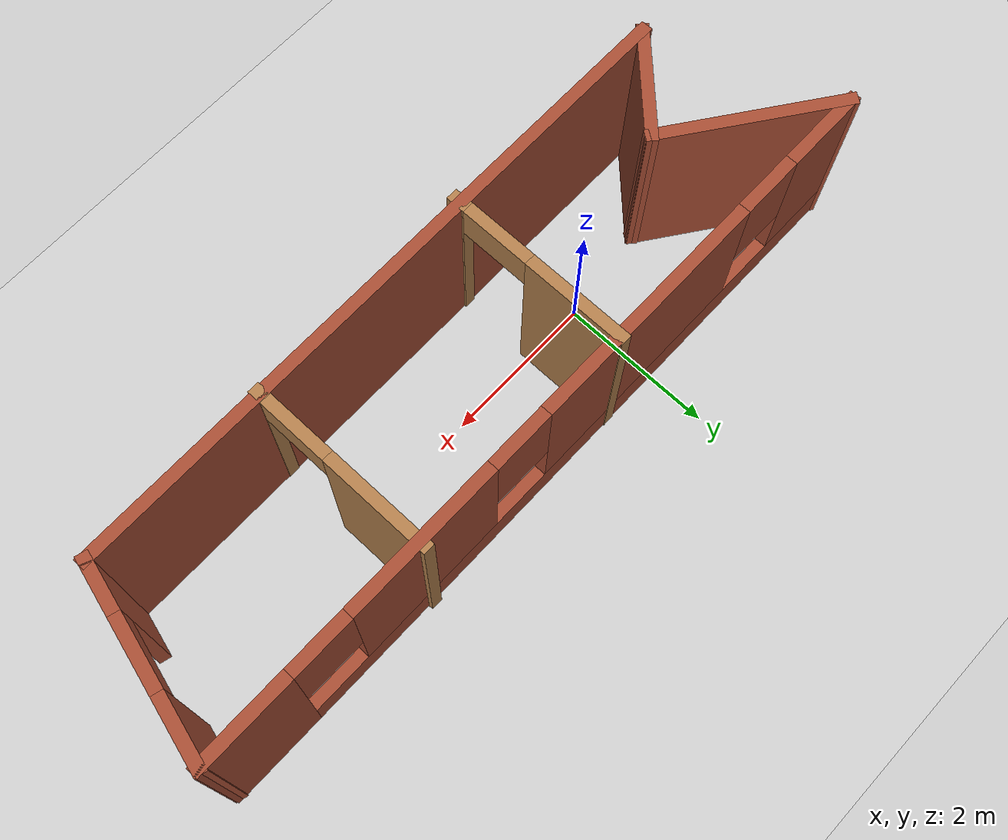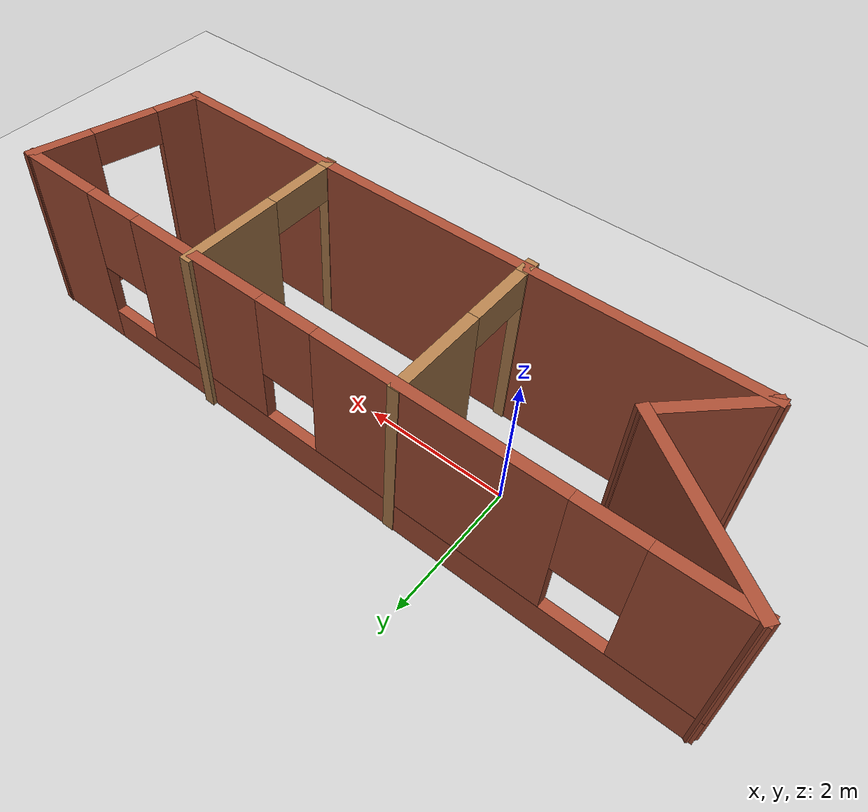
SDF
<sdf version="1.7">
 <world name="default">
  <light name="sun" type="directional">
   <pose>0 0 10 0 -0 0</pose>
   <diffuse>0.8 0.8 0.8 1</diffuse>
   <specular>0.2 0.2 0.2 1</specular>
   <attenuation>
    <range>1000</range>
    <constant>0.9</constant>
    <linear>0.01</linear>
    <quadratic>0.001</quadratic>
   </attenuation>
   <direction>-0.5 0.1 -0.9</direction>
   <spot><inner_angle>0</inner_angle><outer_angle>0</outer_angle><falloff>0</falloff></spot>
  </light>
  <model name="ground_plane">
   <static>1</static>
   <link name="link">
    <collision name="collision">
     <geometry><plane><normal>0 0 1</normal><size>100 100</size></plane></geometry>
     <surface><friction><ode><mu>100</mu><mu2>50</mu2></ode></friction></surface>
    </collision>
    <visual name="visual">
     <cast_shadows>0</cast_shadows>
     <geometry><plane><normal>0 0 1</normal><size>100 100</size></plane></geometry>
     <material>
      <script><uri>file://media/materials/scripts/gazebo.material</uri><name>Gazebo/Grey</name></script>
     </material>
    </visual>
   </link>
  </model>
  <gravity>0 0 -9.8</gravity>
  <magnetic_field>6e-06 2.3e-05 -4.2e-05</magnetic_field>
  <atmosphere type="adiabatic"/>
  <physics type="ode">
   <max_step_size>0.001</max_step_size>
   <real_time_factor>1</real_time_factor>
   <real_time_update_rate>1000</real_time_update_rate>
  </physics>
  <scene><ambient>0.4 0.4 0.4 1</ambient><background>0.7 0.7 0.7 1</background><shadows>1</shadows></scene>
  <audio><device>default</device></audio>
  <spherical_coordinates>
   <surface_model>EARTH_WGS84</surface_model>
   <latitude_deg>0</latitude_deg>
   <longitude_deg>0</longitude_deg>
   <elevation>0</elevation>
   <heading_deg>0</heading_deg>
  </spherical_coordinates>
  <model name="first">
   <pose>1.82045 0.227789 0 0 -0 0</pose>
   <link name="Wall_0">
    <collision name="Wall_0_Collision">
     <geometry><box><size>1.5 0.15 2.5</size></box></geometry>
     <pose>0 0 1.25 0 -0 0</pose>
    </collision>
    <visual name="Wall_0_Visual">
     <pose>0 0 1.25 0 -0 0</pose>
     <geometry><box><size>1.5 0.15 2.5</size></box></geometry>
     <material>
      <script><uri>file://media/materials/scripts/gazebo.material</uri><name>Gazebo/Bricks</name></script>
      <ambient>1 1 1 1</ambient>
     </material>
     <meta><layer>0</layer></meta>
    </visual>
    <pose>-3.54955 -0.878217 0 0 -0 -2.35619</pose>
   </link>
   <link name="Wall_1">
    <collision name="Wall_1_Collision">
     <geometry><box><size>8.5 0.15 2.5</size></box></geometry>
     <pose>0 0 1.25 0 -0 0</pose>
    </collision>
    <visual name="Wall_1_Visual">
     <pose>0 0 1.25 0 -0 0</pose>
     <geometry><box><size>8.5 0.15 2.5</size></box></geometry>
     <material>
      <script><uri>file://media/materials/scripts/gazebo.material</uri><name>Gazebo/Bricks</name></script>
      <ambient>1 1 1 1</ambient>
     </material>
     <meta><layer>0</layer></meta>
    </visual>
    <pose>0.148148 -1.35551 0 0 -0 0</pose>
   </link>
   <link name="Wall_11">
    <pose>-1.05651 -0.249081 0 0 -0 -1.5708</pose>
    <visual name="Wall_11_Visual_0">
     <pose>-0.570601 0 1.25 0 -0 0</pose>
     <geometry><box><size>1.3588 0.15 2.5</size></box></geometry>
     <material>
      <script><uri>file://media/materials/scripts/gazebo.material</uri><name>Gazebo/Wood</name></script>
      <ambient>1 1 1 1</ambient>
     </material>
     <meta><layer>0</layer></meta>
    </visual>
    <collision name="Wall_11_Collision_0">
     <geometry><box><size>1.3588 0.15 2.5</size></box></geometry>
     <pose>-0.570601 0 1.25 0 -0 0</pose>
    </collision>
    <visual name="Wall_11_Visual_1">
     <pose>1.1294 0 1.25 0 -0 0</pose>
     <geometry><box><size>0.241203 0.15 2.5</size></box></geometry>
     <material>
      <script><uri>file://media/materials/scripts/gazebo.material</uri><name>Gazebo/Wood</name></script>
      <ambient>1 1 1 1</ambient>
     </material>
     <meta><layer>0</layer></meta>
    </visual>
    <collision name="Wall_11_Collision_1">
     <geometry><box><size>0.241203 0.15 2.5</size></box></geometry>
     <pose>1.1294 0 1.25 0 -0 0</pose>
    </collision>
    <visual name="Wall_11_Visual_2">
     <pose>0.558797 0 2.25 0 -0 0</pose>
     <geometry><box><size>0.9 0.15 0.5</size></box></geometry>
     <material>
      <script><uri>file://media/materials/scripts/gazebo.material</uri><name>Gazebo/Wood</name></script>
      <ambient>1 1 1 1</ambient>
     </material>
     <meta><layer>0</layer></meta>
    </visual>
    <collision name="Wall_11_Collision_2">
     <geometry><box><size>0.9 0.15 0.5</size></box></geometry>
     <pose>0.558797 0 2.25 0 -0 0</pose>
    </collision>
   </link>
   <link name="Wall_2">
    <pose>4.62726 -0.220551 0 0 -0 1.309</pose>
    <visual name="Wall_2_Visual_0">
     <pose>-0.896998 0 1.25 0 -0 0</pose>
     <geometry><box><size>0.706004 0.15 2.5</size></box></geometry>
     <material>
      <script><uri>file://media/materials/scripts/gazebo.material</uri><name>Gazebo/Bricks</name></script>
      <ambient>1 1 1 1</ambient>
     </material>
     <meta><layer>0</layer></meta>
    </visual>
    <collision name="Wall_2_Collision_0">
     <geometry><box><size>0.706004 0.15 2.5</size></box></geometry>
     <pose>-0.896998 0 1.25 0 -0 0</pose>
    </collision>
    <visual name="Wall_2_Visual_1">
     <pose>0.803002 0 1.25 0 -0 0</pose>
     <geometry><box><size>0.893996 0.15 2.5</size></box></geometry>
     <material>
      <script><uri>file://media/materials/scripts/gazebo.material</uri><name>Gazebo/Bricks</name></script>
      <ambient>1 1 1 1</ambient>
     </material>
     <meta><layer>0</layer></meta>
    </visual>
    <collision name="Wall_2_Collision_1">
     <geometry><box><size>0.893996 0.15 2.5</size></box></geometry>
     <pose>0.803002 0 1.25 0 -0 0</pose>
    </collision>
    <visual name="Wall_2_Visual_2">
     <pose>-0.093996 0 2.25 0 -0 0</pose>
     <geometry><box><size>0.9 0.15 0.5</size></box></geometry>
     <material>
      <script><uri>file://media/materials/scripts/gazebo.material</uri><name>Gazebo/Bricks</name></script>
      <ambient>1 1 1 1</ambient>
     </material>
     <meta><layer>0</layer></meta>
    </visual>
    <collision name="Wall_2_Collision_2">
     <geometry><box><size>0.9 0.15 0.5</size></box></geometry>
     <pose>-0.093996 0 2.25 0 -0 0</pose>
    </collision>
   </link>
   <link name="Wall_3">
    <pose>0.006372 0.914412 0 0 -0 3.14159</pose>
    <visual name="Wall_3_Visual_0">
     <pose>-4.36622 0 1.25 0 -0 0</pose>
     <geometry><box><size>1.26756 0.15 2.5</size></box></geometry>
     <material>
      <script><uri>file://media/materials/scripts/gazebo.material</uri><name>Gazebo/Bricks</name></script>
      <ambient>1 1 1 1</ambient>
     </material>
     <meta><layer>0</layer></meta>
    </visual>
    <collision name="Wall_3_Collision_0">
     <geometry><box><size>1.26756 0.15 2.5</size></box></geometry>
     <pose>-4.36622 0 1.25 0 -0 0</pose>
    </collision>
    <visual name="Wall_3_Visual_1">
     <pose>0.633778 0 0.25 0 -0 0</pose>
     <geometry><box><size>8.73244 0.15 0.5</size></box></geometry>
     <material>
      <script><uri>file://media/materials/scripts/gazebo.material</uri><name>Gazebo/Bricks</name></script>
      <ambient>1 1 1 1</ambient>
     </material>
     <meta><layer>0</layer></meta>
    </visual>
    <collision name="Wall_3_Collision_1">
     <geometry><box><size>8.73244 0.15 0.5</size></box></geometry>
     <pose>0.633778 0 0.25 0 -0 0</pose>
    </collision>
    <visual name="Wall_3_Visual_2">
     <pose>-1.90282 0 1.5 0 -0 0</pose>
     <geometry><box><size>2.05925 0.15 2</size></box></geometry>
     <material>
      <script><uri>file://media/materials/scripts/gazebo.material</uri><name>Gazebo/Bricks</name></script>
      <ambient>1 1 1 1</ambient>
     </material>
     <meta><layer>0</layer></meta>
    </visual>
    <collision name="Wall_3_Collision_2">
     <geometry><box><size>2.05925 0.15 2</size></box></geometry>
     <pose>-1.90282 0 1.5 0 -0 0</pose>
    </collision>
    <visual name="Wall_3_Visual_3">
     <pose>1.50394 0 1.5 0 -0 0</pose>
     <geometry><box><size>3.15428 0.15 2</size></box></geometry>
     <material>
      <script><uri>file://media/materials/scripts/gazebo.material</uri><name>Gazebo/Bricks</name></script>
      <ambient>1 1 1 1</ambient>
     </material>
     <meta><layer>0</layer></meta>
    </visual>
    <collision name="Wall_3_Collision_3">
     <geometry><box><size>3.15428 0.15 2</size></box></geometry>
     <pose>1.50394 0 1.5 0 -0 0</pose>
    </collision>
    <visual name="Wall_3_Visual_4">
     <pose>4.44054 0 1.5 0 -0 0</pose>
     <geometry><box><size>1.11892 0.15 2</size></box></geometry>
     <material>
      <script><uri>file://media/materials/scripts/gazebo.material</uri><name>Gazebo/Bricks</name></script>
      <ambient>1 1 1 1</ambient>
     </material>
     <meta><layer>0</layer></meta>
    </visual>
    <collision name="Wall_3_Collision_4">
     <geometry><box><size>1.11892 0.15 2</size></box></geometry>
     <pose>4.44054 0 1.5 0 -0 0</pose>
    </collision>
    <visual name="Wall_3_Visual_5">
     <pose>-3.33244 0 1.9 0 -0 0</pose>
     <geometry><box><size>0.8 0.15 1.2</size></box></geometry>
     <material>
      <script><uri>file://media/materials/scripts/gazebo.material</uri><name>Gazebo/Bricks</name></script>
      <ambient>1 1 1 1</ambient>
     </material>
     <meta><layer>0</layer></meta>
    </visual>
    <collision name="Wall_3_Collision_5">
     <geometry><box><size>0.8 0.15 1.2</size></box></geometry>
     <pose>-3.33244 0 1.9 0 -0 0</pose>
    </collision>
    <visual name="Wall_3_Visual_6">
     <pose>-0.473198 0 1.9 0 -0 0</pose>
     <geometry><box><size>0.8 0.15 1.2</size></box></geometry>
     <material>
      <script><uri>file://media/materials/scripts/gazebo.material</uri><name>Gazebo/Bricks</name></script>
      <ambient>1 1 1 1</ambient>
     </material>
     <meta><layer>0</layer></meta>
    </visual>
    <collision name="Wall_3_Collision_6">
     <geometry><box><size>0.8 0.15 1.2</size></box></geometry>
     <pose>-0.473198 0 1.9 0 -0 0</pose>
    </collision>
    <visual name="Wall_3_Visual_7">
     <pose>3.48108 0 1.9 0 -0 0</pose>
     <geometry><box><size>0.8 0.15 1.2</size></box></geometry>
     <material>
      <script><uri>file://media/materials/scripts/gazebo.material</uri><name>Gazebo/Bricks</name></script>
      <ambient>1 1 1 1</ambient>
     </material>
     <meta><layer>0</layer></meta>
    </visual>
    <collision name="Wall_3_Collision_7">
     <geometry><box><size>0.8 0.15 1.2</size></box></geometry>
     <pose>3.48108 0 1.9 0 -0 0</pose>
    </collision>
   </link>
   <link name="Wall_4">
    <collision name="Wall_4_Collision">
     <geometry><box><size>2.41697 0.15 2.5</size></box></geometry>
     <pose>0 0 1.25 0 -0 0</pose>
    </collision>
    <visual name="Wall_4_Visual">
     <pose>0 0 1.25 0 -0 0</pose>
     <geometry><box><size>2.41697 0.15 2.5</size></box></geometry>
     <material>
      <script><uri>file://media/materials/scripts/gazebo.material</uri><name>Gazebo/Bricks</name></script>
      <ambient>1 1 1 1</ambient>
     </material>
     <meta><layer>0</layer></meta>
    </visual>
    <pose>-3.99544 0.256746 0 0 -0 -0.618992</pose>
   </link>
   <link name="Wall_9">
    <pose>1.93961 -0.203454 0 0 -0 -1.5708</pose>
    <visual name="Wall_9_Visual_0">
     <pose>-0.540184 0 1.25 0 -0 0</pose>
     <geometry><box><size>1.41963 0.15 2.5</size></box></geometry>
     <material>
      <script><uri>file://media/materials/scripts/gazebo.material</uri><name>Gazebo/Wood</name></script>
      <ambient>1 1 1 1</ambient>
     </material>
     <meta><layer>0</layer></meta>
    </visual>
    <collision name="Wall_9_Collision_0">
     <geometry><box><size>1.41963 0.15 2.5</size></box></geometry>
     <pose>-0.540184 0 1.25 0 -0 0</pose>
    </collision>
    <visual name="Wall_9_Visual_1">
     <pose>1.15982 0 1.25 0 -0 0</pose>
     <geometry><box><size>0.180368 0.15 2.5</size></box></geometry>
     <material>
      <script><uri>file://media/materials/scripts/gazebo.material</uri><name>Gazebo/Wood</name></script>
      <ambient>1 1 1 1</ambient>
     </material>
     <meta><layer>0</layer></meta>
    </visual>
    <collision name="Wall_9_Collision_1">
     <geometry><box><size>0.180368 0.15 2.5</size></box></geometry>
     <pose>1.15982 0 1.25 0 -0 0</pose>
    </collision>
    <visual name="Wall_9_Visual_2">
     <pose>0.619632 0 2.25 0 -0 0</pose>
     <geometry><box><size>0.9 0.15 0.5</size></box></geometry>
     <material>
      <script><uri>file://media/materials/scripts/gazebo.material</uri><name>Gazebo/Wood</name></script>
      <ambient>1 1 1 1</ambient>
     </material>
     <meta><layer>0</layer></meta>
    </visual>
    <collision name="Wall_9_Collision_2">
     <geometry><box><size>0.9 0.15 0.5</size></box></geometry>
     <pose>0.619632 0 2.25 0 -0 0</pose>
    </collision>
   </link>
   <static>1</static>
  </model>
 </world>
</sdf>
